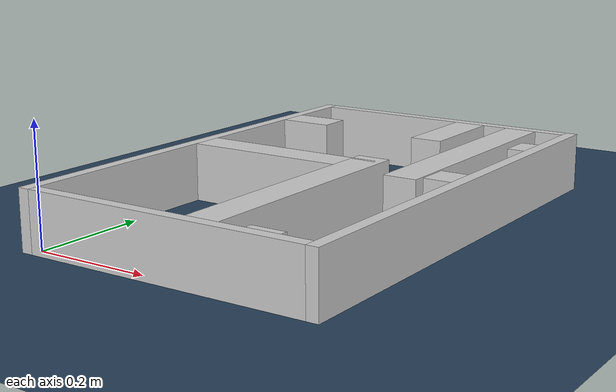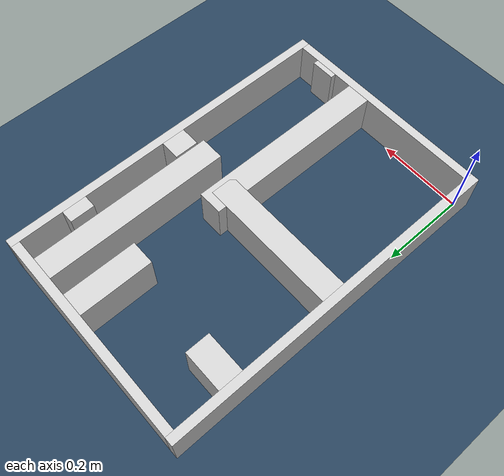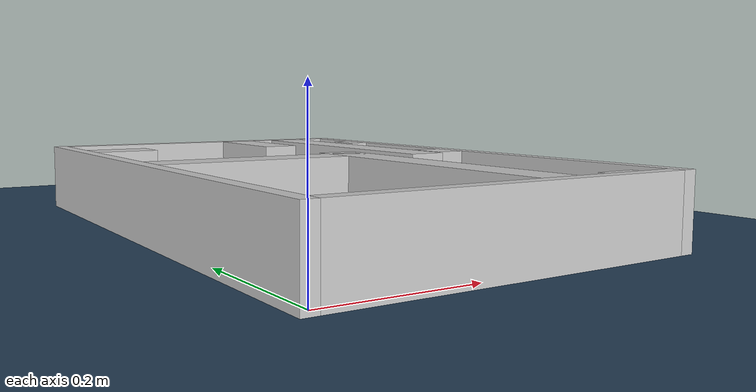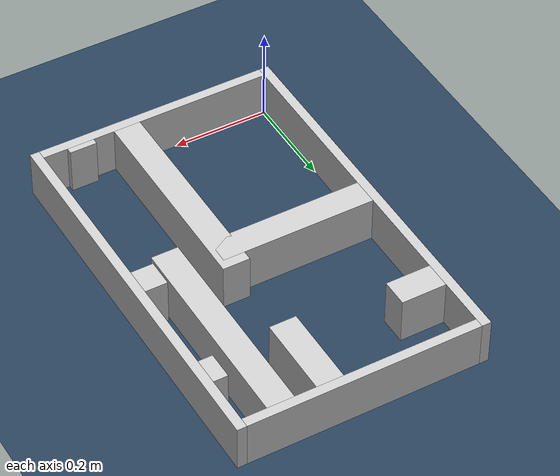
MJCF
<?xml version="1.0" ?>
<mujoco model="generated_real_template">
  <compiler angle="degree"/>
  <option timestep="0.002" integrator="implicitfast" iterations="100" cone="elliptic"/>
  <default>
    <geom density="1"/>
  </default>
  <asset>
    <texture builtin="gradient" height="3072" rgb1="0.3 0.5 0.7" rgb2="0 0 0" type="skybox" width="512"/>
    <texture builtin="checker" height="300" mark="edge" markrgb="0.8 0.8 0.8" name="groundplane" rgb1="0.2 0.3 0.4" rgb2="0.1 0.2 0.3" type="2d" width="300"/>
    <material name="groundplane" reflectance="0.2" texrepeat="5 5" texture="groundplane" texuniform="true"/>
  </asset>
  <worldbody>
    <light dir="0 0 -1" directional="true" pos="0 0 1.5"/>
    <geom name="floor" type="plane" condim="4" friction="0.5 0.005 0.001" material="groundplane" size="0 0 0.05"/>
    <body name="walls">
      <geom name="wall_boundary_left" type="box" condim="4" friction="1.0 0.005 0.0001" rgba="0.8 0.8 0.8 1" pos="-0.010000 0.387500 0.050000" euler="0 0 0.000000" size="0.010000 0.407500 0.050000"/>
      <geom name="wall_boundary_right" type="box" condim="4" friction="1.0 0.005 0.0001" rgba="0.8 0.8 0.8 1" pos="0.500000 0.387500 0.050000" euler="0 0 0.000000" size="0.010000 0.407500 0.050000"/>
      <geom name="wall_boundary_bottom" type="box" condim="4" friction="1.0 0.005 0.0001" rgba="0.8 0.8 0.8 1" pos="0.245000 -0.010000 0.050000" euler="0 0 0.000000" size="0.245000 0.010000 0.050000"/>
      <geom name="wall_boundary_top" type="box" condim="4" friction="1.0 0.005 0.0001" rgba="0.8 0.8 0.8 1" pos="0.245000 0.785000 0.050000" euler="0 0 0.000000" size="0.245000 0.010000 0.050000"/>
      <geom name="wall_inner_1_1" type="box" condim="4" friction="1.0 0.005 0.0001" rgba="0.8 0.8 0.8 1" pos="0.308773 0.218083 0.050000" euler="0 0 90.000000" size="0.218083 0.028500 0.050000"/>
      <geom name="wall_inner_1_2" type="box" condim="4" friction="1.0 0.005 0.0001" rgba="0.8 0.8 0.8 1" pos="0.308773 0.690735 0.050000" euler="0 0 90.000000" size="0.084265 0.028500 0.050000"/>
      <geom name="wall_inner_2_1" type="box" condim="4" friction="1.0 0.005 0.0001" rgba="0.8 0.8 0.8 1" pos="0.162410 0.387231 0.050000" euler="0 0 0.000000" size="0.162410 0.028500 0.050000"/>
      <geom name="wall_inner_2_2" type="box" condim="4" friction="1.0 0.005 0.0001" rgba="0.8 0.8 0.8 1" pos="0.466380 0.387231 0.050000" euler="0 0 0.000000" size="0.023620 0.028500 0.050000"/>
      <geom name="wall_inner_3_1" type="box" condim="4" friction="1.0 0.005 0.0001" rgba="0.8 0.8 0.8 1" pos="0.047299 0.645029 0.050000" euler="0 0 0.000000" size="0.047299 0.028500 0.050000"/>
      <geom name="wall_inner_3_2" type="box" condim="4" friction="1.0 0.005 0.0001" rgba="0.8 0.8 0.8 1" pos="0.474784 0.645029 0.050000" euler="0 0 0.000000" size="0.015216 0.028500 0.050000"/>
      <geom name="wall_inner_4_1" type="box" condim="4" friction="1.0 0.005 0.0001" rgba="0.8 0.8 0.8 1" pos="0.410429 0.006390 0.050000" euler="0 0 90.000000" size="0.006390 0.028500 0.050000"/>
      <geom name="wall_inner_4_2" type="box" condim="4" friction="1.0 0.005 0.0001" rgba="0.8 0.8 0.8 1" pos="0.410429 0.559167 0.050000" euler="0 0 90.000000" size="0.215833 0.028500 0.050000"/>
    </body>
  </worldbody>
</mujoco>
